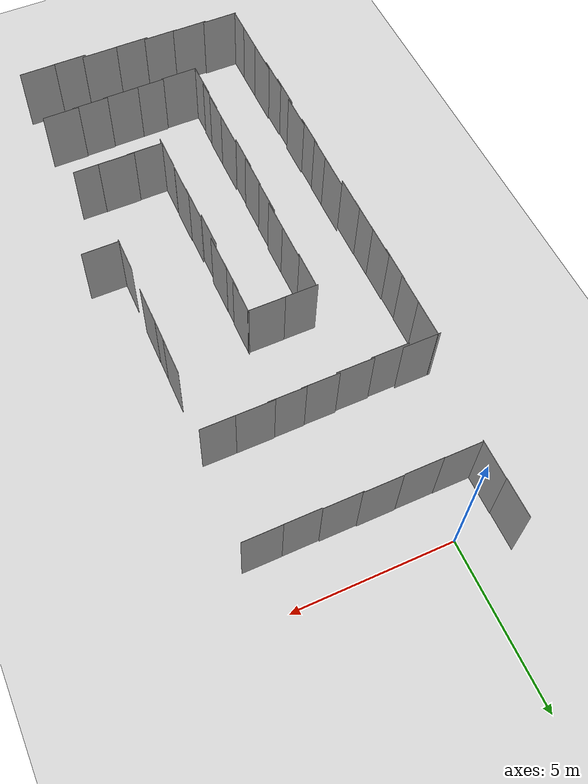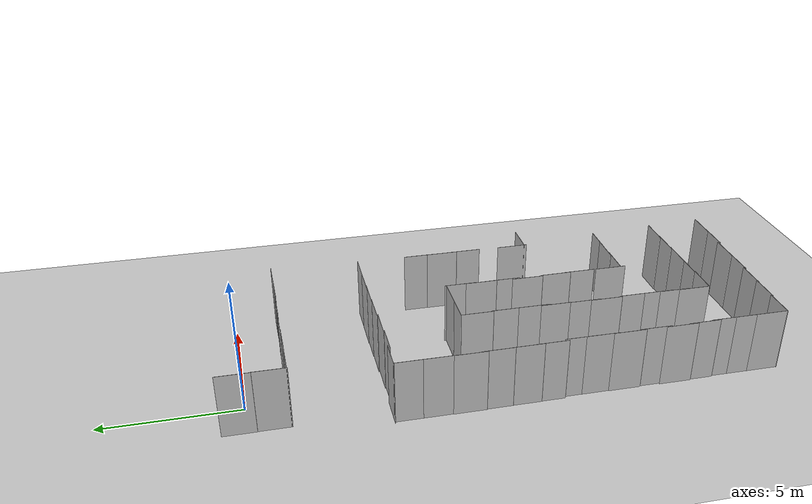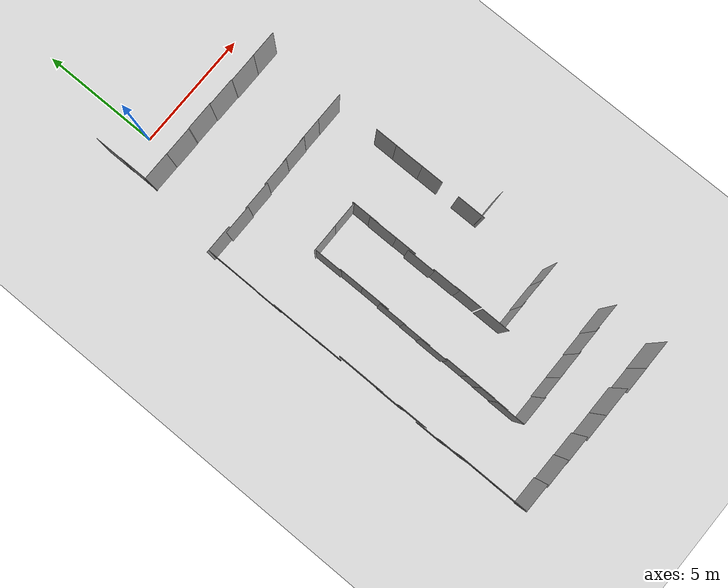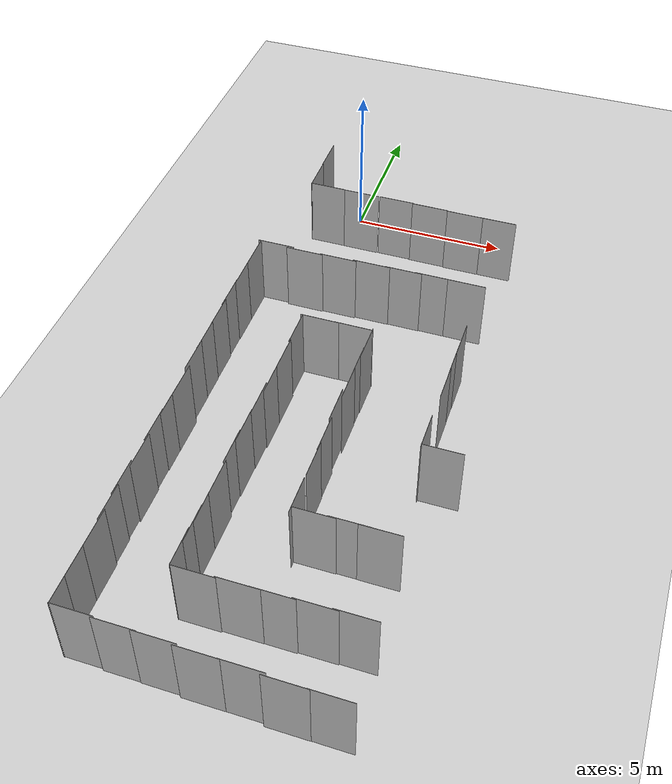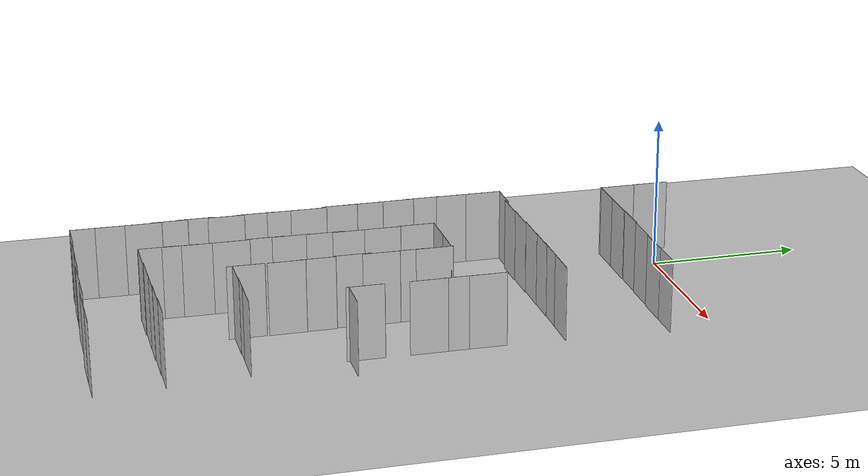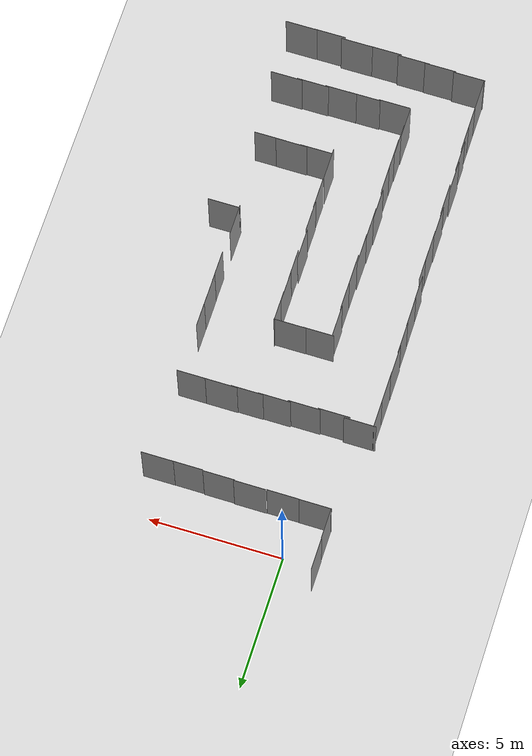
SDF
<sdf version="1.7">
 <world name="default">
  <model name="ground_plane">
   <static>1</static>
   <link name="link">
    <collision name="collision">
     <geometry><plane><normal>0 0 1</normal><size>100 100</size></plane></geometry>
     <surface><friction><ode><mu>100</mu><mu2>50</mu2></ode></friction></surface>
    </collision>
    <visual name="visual">
     <cast_shadows>0</cast_shadows>
     <geometry><plane><normal>0 0 1</normal><size>100 100</size></plane></geometry>
     <material>
      <script><uri>file://media/materials/scripts/gazebo.material</uri><name>Gazebo/Grey</name></script>
     </material>
    </visual>
   </link>
  </model>
  <model name="nist_maze_wall_240_clone">
   <static>1</static>
   <link name="nist__maze_wall_240_link">
    <collision name="collision">
     <geometry>
      <mesh><uri>model://nist_maze_wall_240/meshes/nist_maze_wall_240.dae</uri><scale>1 1 1</scale></mesh>
     </geometry>
    </collision>
    <visual name="visual">
     <geometry>
      <mesh><uri>model://nist_maze_wall_240/meshes/nist_maze_wall_240.dae</uri><scale>1 1 1</scale></mesh>
     </geometry>
    </visual>
   </link>
   <pose>0.459411 -2.10367 0 0 -0 0</pose>
  </model>
  <model name="nist_maze_wall_240_clone_0">
   <static>1</static>
   <link name="nist__maze_wall_240_link">
    <collision name="collision">
     <geometry>
      <mesh><uri>model://nist_maze_wall_240/meshes/nist_maze_wall_240.dae</uri><scale>1 1 1</scale></mesh>
     </geometry>
    </collision>
    <visual name="visual">
     <geometry>
      <mesh><uri>model://nist_maze_wall_240/meshes/nist_maze_wall_240.dae</uri><scale>1 1 1</scale></mesh>
     </geometry>
    </visual>
   </link>
   <pose>1.68355 -2.08961 0 0 -0 0</pose>
  </model>
  <model name="nist_maze_wall_240_clone_1">
   <static>1</static>
   <link name="nist__maze_wall_240_link">
    <collision name="collision">
     <geometry>
      <mesh><uri>model://nist_maze_wall_240/meshes/nist_maze_wall_240.dae</uri><scale>1 1 1</scale></mesh>
     </geometry>
    </collision>
    <visual name="visual">
     <geometry>
      <mesh><uri>model://nist_maze_wall_240/meshes/nist_maze_wall_240.dae</uri><scale>1 1 1</scale></mesh>
     </geometry>
    </visual>
   </link>
   <pose>2.82384 -2.11242 0 0 -0 0</pose>
  </model>
  <model name="nist_maze_wall_240_clone_2">
   <static>1</static>
   <link name="nist__maze_wall_240_link">
    <collision name="collision">
     <geometry>
      <mesh><uri>model://nist_maze_wall_240/meshes/nist_maze_wall_240.dae</uri><scale>1 1 1</scale></mesh>
     </geometry>
    </collision>
    <visual name="visual">
     <geometry>
      <mesh><uri>model://nist_maze_wall_240/meshes/nist_maze_wall_240.dae</uri><scale>1 1 1</scale></mesh>
     </geometry>
    </visual>
   </link>
   <pose>4.019 -2.13656 0 0 -0 0</pose>
  </model>
  <model name="nist_maze_wall_240_clone_3">
   <static>1</static>
   <link name="nist__maze_wall_240_link">
    <collision name="collision">
     <geometry>
      <mesh><uri>model://nist_maze_wall_240/meshes/nist_maze_wall_240.dae</uri><scale>1 1 1</scale></mesh>
     </geometry>
    </collision>
    <visual name="visual">
     <geometry>
      <mesh><uri>model://nist_maze_wall_240/meshes/nist_maze_wall_240.dae</uri><scale>1 1 1</scale></mesh>
     </geometry>
    </visual>
   </link>
   <pose>5.11919 -2.13257 0 0 -0 0</pose>
  </model>
  <model name="nist_maze_wall_240_clone_3_clone_4">
   <static>1</static>
   <link name="nist__maze_wall_240_link">
    <collision name="collision">
     <geometry>
      <mesh><uri>model://nist_maze_wall_240/meshes/nist_maze_wall_240.dae</uri><scale>1 1 1</scale></mesh>
     </geometry>
    </collision>
    <visual name="visual">
     <geometry>
      <mesh><uri>model://nist_maze_wall_240/meshes/nist_maze_wall_240.dae</uri><scale>1 1 1</scale></mesh>
     </geometry>
    </visual>
   </link>
   <pose>-0.726352 -2.09682 0 0 -0 0</pose>
  </model>
  <model name="nist_maze_wall_240_clone_3_clone_5_clone_clone">
   <static>1</static>
   <link name="nist__maze_wall_240_link">
    <collision name="collision">
     <geometry>
      <mesh><uri>model://nist_maze_wall_240/meshes/nist_maze_wall_240.dae</uri><scale>1 1 1</scale></mesh>
     </geometry>
    </collision>
    <visual name="visual">
     <geometry>
      <mesh><uri>model://nist_maze_wall_240/meshes/nist_maze_wall_240.dae</uri><scale>1 1 1</scale></mesh>
     </geometry>
    </visual>
   </link>
   <pose>-0.704858 -0.929022 0 0 -0 1.57</pose>
  </model>
  <model name="nist_maze_wall_240_clone_3_clone_5_clone_clone_0">
   <static>1</static>
   <link name="nist__maze_wall_240_link">
    <collision name="collision">
     <geometry>
      <mesh><uri>model://nist_maze_wall_240/meshes/nist_maze_wall_240.dae</uri><scale>1 1 1</scale></mesh>
     </geometry>
    </collision>
    <visual name="visual">
     <geometry>
      <mesh><uri>model://nist_maze_wall_240/meshes/nist_maze_wall_240.dae</uri><scale>1 1 1</scale></mesh>
     </geometry>
    </visual>
   </link>
   <pose>-0.716954 0.246536 0 0 -0 1.57</pose>
  </model>
  <model name="nist_maze_wall_240_clone_3_clone_6_clone_clone_clone_5">
   <static>1</static>
   <link name="nist__maze_wall_240_link">
    <collision name="collision">
     <geometry>
      <mesh><uri>model://nist_maze_wall_240/meshes/nist_maze_wall_240.dae</uri><scale>1 1 1</scale></mesh>
     </geometry>
    </collision>
    <visual name="visual">
     <geometry>
      <mesh><uri>model://nist_maze_wall_240/meshes/nist_maze_wall_240.dae</uri><scale>1 1 1</scale></mesh>
     </geometry>
    </visual>
   </link>
   <pose>5.11802 -15.2594 0 0 -0 0</pose>
  </model>
  <model name="nist_maze_wall_240_clone_3_clone_6_clone_clone_clone_9">
   <static>1</static>
   <link name="nist__maze_wall_240_link">
    <collision name="collision">
     <geometry>
      <mesh><uri>model://nist_maze_wall_240/meshes/nist_maze_wall_240.dae</uri><scale>1 1 1</scale></mesh>
     </geometry>
    </collision>
    <visual name="visual">
     <geometry>
      <mesh><uri>model://nist_maze_wall_240/meshes/nist_maze_wall_240.dae</uri><scale>1 1 1</scale></mesh>
     </geometry>
    </visual>
   </link>
   <pose>5.90849 -12.1957 0 0 -0 0</pose>
  </model>
  <model name="nist_maze_wall_240_clone_3_clone_6_clone_clone_clone_10">
   <static>1</static>
   <link name="nist__maze_wall_240_link">
    <collision name="collision">
     <geometry>
      <mesh><uri>model://nist_maze_wall_240/meshes/nist_maze_wall_240.dae</uri><scale>1 1 1</scale></mesh>
     </geometry>
    </collision>
    <visual name="visual">
     <geometry>
      <mesh><uri>model://nist_maze_wall_240/meshes/nist_maze_wall_240.dae</uri><scale>1 1 1</scale></mesh>
     </geometry>
    </visual>
   </link>
   <pose>4.29995 -15.2529 0 0 -0 0</pose>
  </model>
  <model name="nist_maze_wall_240_clone_3_clone_6_clone_clone_clone_11">
   <static>1</static>
   <link name="nist__maze_wall_240_link">
    <collision name="collision">
     <geometry>
      <mesh><uri>model://nist_maze_wall_240/meshes/nist_maze_wall_240.dae</uri><scale>1 1 1</scale></mesh>
     </geometry>
    </collision>
    <visual name="visual">
     <geometry>
      <mesh><uri>model://nist_maze_wall_240/meshes/nist_maze_wall_240.dae</uri><scale>1 1 1</scale></mesh>
     </geometry>
    </visual>
   </link>
   <pose>3.3523 -15.2711 0 0 -0 0</pose>
  </model>
  <model name="nist_maze_wall_240_clone_3_clone_5_clone_clone_0_clone_13_clone_11_clone">
   <static>1</static>
   <link name="nist__maze_wall_240_link">
    <collision name="collision">
     <geometry>
      <mesh><uri>model://nist_maze_wall_240/meshes/nist_maze_wall_240.dae</uri><scale>1 1 1</scale></mesh>
     </geometry>
    </collision>
    <visual name="visual">
     <geometry>
      <mesh><uri>model://nist_maze_wall_240/meshes/nist_maze_wall_240.dae</uri><scale>1 1 1</scale></mesh>
     </geometry>
    </visual>
   </link>
   <pose>5.92157 -11.0982 0 0 -0 1.57</pose>
  </model>
  <model name="nist_maze_wall_240_clone_3_clone_5_clone_clone_0_clone_13_clone_11_clone_1">
   <static>1</static>
   <link name="nist__maze_wall_240_link">
    <collision name="collision">
     <geometry>
      <mesh><uri>model://nist_maze_wall_240/meshes/nist_maze_wall_240.dae</uri><scale>1 1 1</scale></mesh>
     </geometry>
    </collision>
    <visual name="visual">
     <geometry>
      <mesh><uri>model://nist_maze_wall_240/meshes/nist_maze_wall_240.dae</uri><scale>1 1 1</scale></mesh>
     </geometry>
    </visual>
   </link>
   <pose>5.9524 -9.14789 0 0 -0 1.57</pose>
  </model>
  <model name="nist_maze_wall_240_clone_3_clone_5_clone_clone_0_clone_13_clone_11_clone_2">
   <static>1</static>
   <link name="nist__maze_wall_240_link">
    <collision name="collision">
     <geometry>
      <mesh><uri>model://nist_maze_wall_240/meshes/nist_maze_wall_240.dae</uri><scale>1 1 1</scale></mesh>
     </geometry>
    </collision>
    <visual name="visual">
     <geometry>
      <mesh><uri>model://nist_maze_wall_240/meshes/nist_maze_wall_240.dae</uri><scale>1 1 1</scale></mesh>
     </geometry>
    </visual>
   </link>
   <pose>5.94721 -8.21528 0 0 -0 1.57</pose>
  </model>
  <model name="nist_maze_wall_240_clone_3_clone_5_clone_clone_0_clone_13_clone_11_clone_3">
   <static>1</static>
   <link name="nist__maze_wall_240_link">
    <collision name="collision">
     <geometry>
      <mesh><uri>model://nist_maze_wall_240/meshes/nist_maze_wall_240.dae</uri><scale>1 1 1</scale></mesh>
     </geometry>
    </collision>
    <visual name="visual">
     <geometry>
      <mesh><uri>model://nist_maze_wall_240/meshes/nist_maze_wall_240.dae</uri><scale>1 1 1</scale></mesh>
     </geometry>
    </visual>
   </link>
   <pose>3.34951 -14.2627 0 0 -0 1.57</pose>
  </model>
  <model name="nist_maze_wall_240_clone_3_clone_5_clone_clone_0_clone_13_clone_11_clone_4">
   <static>1</static>
   <link name="nist__maze_wall_240_link">
    <collision name="collision">
     <geometry>
      <mesh><uri>model://nist_maze_wall_240/meshes/nist_maze_wall_240.dae</uri><scale>1 1 1</scale></mesh>
     </geometry>
    </collision>
    <visual name="visual">
     <geometry>
      <mesh><uri>model://nist_maze_wall_240/meshes/nist_maze_wall_240.dae</uri><scale>1 1 1</scale></mesh>
     </geometry>
    </visual>
   </link>
   <pose>3.36298 -13.0004 0 0 -0 1.57</pose>
  </model>
  <model name="nist_maze_wall_240_clone_3_clone_5_clone_clone_0_clone_13_clone_11_clone_5">
   <static>1</static>
   <link name="nist__maze_wall_240_link">
    <collision name="collision">
     <geometry>
      <mesh><uri>model://nist_maze_wall_240/meshes/nist_maze_wall_240.dae</uri><scale>1 1 1</scale></mesh>
     </geometry>
    </collision>
    <visual name="visual">
     <geometry>
      <mesh><uri>model://nist_maze_wall_240/meshes/nist_maze_wall_240.dae</uri><scale>1 1 1</scale></mesh>
     </geometry>
    </visual>
   </link>
   <pose>3.34708 -12.0527 0 0 -0 1.57</pose>
  </model>
  <model name="nist_maze_wall_240_clone_3_clone_5_clone_clone_0_clone_13_clone_11_clone_6">
   <static>1</static>
   <link name="nist__maze_wall_240_link">
    <collision name="collision">
     <geometry>
      <mesh><uri>model://nist_maze_wall_240/meshes/nist_maze_wall_240.dae</uri><scale>1 1 1</scale></mesh>
     </geometry>
    </collision>
    <visual name="visual">
     <geometry>
      <mesh><uri>model://nist_maze_wall_240/meshes/nist_maze_wall_240.dae</uri><scale>1 1 1</scale></mesh>
     </geometry>
    </visual>
   </link>
   <pose>3.29989 -10.9254 0 0 -0 1.57</pose>
  </model>
  <model name="nist_maze_wall_240_clone_3_clone_5_clone_clone_0_clone_13_clone_11_clone_7">
   <static>1</static>
   <link name="nist__maze_wall_240_link">
    <collision name="collision">
     <geometry>
      <mesh><uri>model://nist_maze_wall_240/meshes/nist_maze_wall_240.dae</uri><scale>1 1 1</scale></mesh>
     </geometry>
    </collision>
    <visual name="visual">
     <geometry>
      <mesh><uri>model://nist_maze_wall_240/meshes/nist_maze_wall_240.dae</uri><scale>1 1 1</scale></mesh>
     </geometry>
    </visual>
   </link>
   <pose>3.36544 -10.0219 0 0 -0 1.57</pose>
  </model>
  <model name="nist_maze_wall_240_clone_3_clone_5_clone_clone_0_clone_13_clone_11_clone_8">
   <static>1</static>
   <link name="nist__maze_wall_240_link">
    <collision name="collision">
     <geometry>
      <mesh><uri>model://nist_maze_wall_240/meshes/nist_maze_wall_240.dae</uri><scale>1 1 1</scale></mesh>
     </geometry>
    </collision>
    <visual name="visual">
     <geometry>
      <mesh><uri>model://nist_maze_wall_240/meshes/nist_maze_wall_240.dae</uri><scale>1 1 1</scale></mesh>
     </geometry>
    </visual>
   </link>
   <pose>3.35893 -9.13193 0 0 -0 1.57</pose>
  </model>
  <model name="nist_maze_wall_240_clone_3_clone_5_clone_clone_0_clone_13_clone_11_clone_9">
   <static>1</static>
   <link name="nist__maze_wall_240_link">
    <collision name="collision">
     <geometry>
      <mesh><uri>model://nist_maze_wall_240/meshes/nist_maze_wall_240.dae</uri><scale>1 1 1</scale></mesh>
     </geometry>
    </collision>
    <visual name="visual">
     <geometry>
      <mesh><uri>model://nist_maze_wall_240/meshes/nist_maze_wall_240.dae</uri><scale>1 1 1</scale></mesh>
     </geometry>
    </visual>
   </link>
   <pose>3.37559 -8.32263 0 0 -0 1.57</pose>
  </model>
  <model name="nist_maze_wall_240_clone_3_clone_5_clone_clone_0_clone_13_clone_11_clone_10">
   <static>1</static>
   <link name="nist__maze_wall_240_link">
    <collision name="collision">
     <geometry>
      <mesh><uri>model://nist_maze_wall_240/meshes/nist_maze_wall_240.dae</uri><scale>1 1 1</scale></mesh>
     </geometry>
    </collision>
    <visual name="visual">
     <geometry>
      <mesh><uri>model://nist_maze_wall_240/meshes/nist_maze_wall_240.dae</uri><scale>1 1 1</scale></mesh>
     </geometry>
    </visual>
   </link>
   <pose>5.95328 -7.29941 0 0 -0 1.57</pose>
  </model>
  <model name="nist_maze_wall_240_clone_3_clone_6_clone_clone_clone_7_clone">
   <static>1</static>
   <link name="nist__maze_wall_240_link">
    <collision name="collision">
     <geometry>
      <mesh><uri>model://nist_maze_wall_240/meshes/nist_maze_wall_240.dae</uri><scale>1 1 1</scale></mesh>
     </geometry>
    </collision>
    <visual name="visual">
     <geometry>
      <mesh><uri>model://nist_maze_wall_240/meshes/nist_maze_wall_240.dae</uri><scale>1 1 1</scale></mesh>
     </geometry>
    </visual>
   </link>
   <pose>4.89106 -5.46696 0 0 -0 0</pose>
  </model>
  <model name="nist_maze_wall_240_clone_3_clone_6_clone_clone_clone_7_clone_0">
   <static>1</static>
   <link name="nist__maze_wall_240_link">
    <collision name="collision">
     <geometry>
      <mesh><uri>model://nist_maze_wall_240/meshes/nist_maze_wall_240.dae</uri><scale>1 1 1</scale></mesh>
     </geometry>
    </collision>
    <visual name="visual">
     <geometry>
      <mesh><uri>model://nist_maze_wall_240/meshes/nist_maze_wall_240.dae</uri><scale>1 1 1</scale></mesh>
     </geometry>
    </visual>
   </link>
   <pose>3.83615 -5.46611 0 0 -0 0</pose>
  </model>
  <model name="nist_maze_wall_240_clone_3_clone_6_clone_clone_clone_7_clone_1">
   <static>1</static>
   <link name="nist__maze_wall_240_link">
    <collision name="collision">
     <geometry>
      <mesh><uri>model://nist_maze_wall_240/meshes/nist_maze_wall_240.dae</uri><scale>1 1 1</scale></mesh>
     </geometry>
    </collision>
    <visual name="visual">
     <geometry>
      <mesh><uri>model://nist_maze_wall_240/meshes/nist_maze_wall_240.dae</uri><scale>1 1 1</scale></mesh>
     </geometry>
    </visual>
   </link>
   <pose>2.87649 -5.48539 0 0 -0 0</pose>
  </model>
  <model name="nist_maze_wall_240_clone_3_clone_6_clone_clone_clone_7_clone_2">
   <static>1</static>
   <link name="nist__maze_wall_240_link">
    <collision name="collision">
     <geometry>
      <mesh><uri>model://nist_maze_wall_240/meshes/nist_maze_wall_240.dae</uri><scale>1 1 1</scale></mesh>
     </geometry>
    </collision>
    <visual name="visual">
     <geometry>
      <mesh><uri>model://nist_maze_wall_240/meshes/nist_maze_wall_240.dae</uri><scale>1 1 1</scale></mesh>
     </geometry>
    </visual>
   </link>
   <pose>1.85386 -5.50373 0 0 -0 0</pose>
  </model>
  <model name="nist_maze_wall_240_clone_3_clone_6_clone_clone_clone_7_clone_3">
   <static>1</static>
   <link name="nist__maze_wall_240_link">
    <collision name="collision">
     <geometry>
      <mesh><uri>model://nist_maze_wall_240/meshes/nist_maze_wall_240.dae</uri><scale>1 1 1</scale></mesh>
     </geometry>
    </collision>
    <visual name="visual">
     <geometry>
      <mesh><uri>model://nist_maze_wall_240/meshes/nist_maze_wall_240.dae</uri><scale>1 1 1</scale></mesh>
     </geometry>
    </visual>
   </link>
   <pose>0.761613 -5.54472 0 0 -0 0</pose>
  </model>
  <model name="nist_maze_wall_240_clone_3_clone_6_clone_clone_clone_7_clone_4">
   <static>1</static>
   <link name="nist__maze_wall_240_link">
    <collision name="collision">
     <geometry>
      <mesh><uri>model://nist_maze_wall_240/meshes/nist_maze_wall_240.dae</uri><scale>1 1 1</scale></mesh>
     </geometry>
    </collision>
    <visual name="visual">
     <geometry>
      <mesh><uri>model://nist_maze_wall_240/meshes/nist_maze_wall_240.dae</uri><scale>1 1 1</scale></mesh>
     </geometry>
    </visual>
   </link>
   <pose>-0.335871 -5.57873 0 0 -0 0</pose>
  </model>
  <model name="nist_maze_wall_240_clone_3_clone_6_clone_clone_clone_7_clone_3_clone">
   <static>1</static>
   <link name="nist__maze_wall_240_link">
    <collision name="collision">
     <geometry>
      <mesh><uri>model://nist_maze_wall_240/meshes/nist_maze_wall_240.dae</uri><scale>1 1 1</scale></mesh>
     </geometry>
    </collision>
    <visual name="visual">
     <geometry>
      <mesh><uri>model://nist_maze_wall_240/meshes/nist_maze_wall_240.dae</uri><scale>1 1 1</scale></mesh>
     </geometry>
    </visual>
   </link>
   <pose>2.19285 -8.38889 0 0 -0 0</pose>
  </model>
  <model name="nist_maze_wall_240_clone_3_clone_6_clone_clone_clone_7_clone_3_clone_0">
   <static>1</static>
   <link name="nist__maze_wall_240_link">
    <collision name="collision">
     <geometry>
      <mesh><uri>model://nist_maze_wall_240/meshes/nist_maze_wall_240.dae</uri><scale>1 1 1</scale></mesh>
     </geometry>
    </collision>
    <visual name="visual">
     <geometry>
      <mesh><uri>model://nist_maze_wall_240/meshes/nist_maze_wall_240.dae</uri><scale>1 1 1</scale></mesh>
     </geometry>
    </visual>
   </link>
   <pose>1.14339 -8.39575 0 0 -0 0</pose>
  </model>
  <model name="nist_maze_wall_240_clone_3_clone_6_clone_clone_clone_7_clone_3_clone_1">
   <static>1</static>
   <link name="nist__maze_wall_240_link">
    <collision name="collision">
     <geometry>
      <mesh><uri>model://nist_maze_wall_240/meshes/nist_maze_wall_240.dae</uri><scale>1 1 1</scale></mesh>
     </geometry>
    </collision>
    <visual name="visual">
     <geometry>
      <mesh><uri>model://nist_maze_wall_240/meshes/nist_maze_wall_240.dae</uri><scale>1 1 1</scale></mesh>
     </geometry>
    </visual>
   </link>
   <pose>-1.31363 -5.513 0 0 -0 0</pose>
  </model>
  <model name="nist_maze_wall_240_clone_3_clone_5_clone_clone_0_clone_13_clone_11_clone_11_clone">
   <static>1</static>
   <link name="nist__maze_wall_240_link">
    <collision name="collision">
     <geometry>
      <mesh><uri>model://nist_maze_wall_240/meshes/nist_maze_wall_240.dae</uri><scale>1 1 1</scale></mesh>
     </geometry>
    </collision>
    <visual name="visual">
     <geometry>
      <mesh><uri>model://nist_maze_wall_240/meshes/nist_maze_wall_240.dae</uri><scale>1 1 1</scale></mesh>
     </geometry>
    </visual>
   </link>
   <pose>-1.22351 -5.4973 0 0 -0 1.57</pose>
  </model>
  <model name="nist_maze_wall_240_clone_3_clone_5_clone_clone_0_clone_13_clone_11_clone_11_clone_0">
   <static>1</static>
   <link name="nist__maze_wall_240_link">
    <collision name="collision">
     <geometry>
      <mesh><uri>model://nist_maze_wall_240/meshes/nist_maze_wall_240.dae</uri><scale>1 1 1</scale></mesh>
     </geometry>
    </collision>
    <visual name="visual">
     <geometry>
      <mesh><uri>model://nist_maze_wall_240/meshes/nist_maze_wall_240.dae</uri><scale>1 1 1</scale></mesh>
     </geometry>
    </visual>
   </link>
   <pose>-1.22592 -6.49864 0 0 -0 1.57</pose>
  </model>
  <model name="nist_maze_wall_240_clone_3_clone_5_clone_clone_0_clone_13_clone_11_clone_11_clone_1">
   <static>1</static>
   <link name="nist__maze_wall_240_link">
    <collision name="collision">
     <geometry>
      <mesh><uri>model://nist_maze_wall_240/meshes/nist_maze_wall_240.dae</uri><scale>1 1 1</scale></mesh>
     </geometry>
    </collision>
    <visual name="visual">
     <geometry>
      <mesh><uri>model://nist_maze_wall_240/meshes/nist_maze_wall_240.dae</uri><scale>1 1 1</scale></mesh>
     </geometry>
    </visual>
   </link>
   <pose>-1.23912 -7.54582 0 0 -0 1.57</pose>
  </model>
  <model name="nist_maze_wall_240_clone_3_clone_5_clone_clone_0_clone_13_clone_11_clone_11_clone_2">
   <static>1</static>
   <link name="nist__maze_wall_240_link">
    <collision name="collision">
     <geometry>
      <mesh><uri>model://nist_maze_wall_240/meshes/nist_maze_wall_240.dae</uri><scale>1 1 1</scale></mesh>
     </geometry>
    </collision>
    <visual name="visual">
     <geometry>
      <mesh><uri>model://nist_maze_wall_240/meshes/nist_maze_wall_240.dae</uri><scale>1 1 1</scale></mesh>
     </geometry>
    </visual>
   </link>
   <pose>-1.21766 -8.48581 0 0 -0 1.57</pose>
  </model>
  <model name="nist_maze_wall_240_clone_3_clone_5_clone_clone_0_clone_13_clone_11_clone_11_clone_3">
   <static>1</static>
   <link name="nist__maze_wall_240_link">
    <collision name="collision">
     <geometry>
      <mesh><uri>model://nist_maze_wall_240/meshes/nist_maze_wall_240.dae</uri><scale>1 1 1</scale></mesh>
     </geometry>
    </collision>
    <visual name="visual">
     <geometry>
      <mesh><uri>model://nist_maze_wall_240/meshes/nist_maze_wall_240.dae</uri><scale>1 1 1</scale></mesh>
     </geometry>
    </visual>
   </link>
   <pose>-1.21067 -9.52695 0 0 -0 1.57</pose>
  </model>
  <model name="nist_maze_wall_240_clone_3_clone_5_clone_clone_0_clone_13_clone_11_clone_11_clone_4">
   <static>1</static>
   <link name="nist__maze_wall_240_link">
    <collision name="collision">
     <geometry>
      <mesh><uri>model://nist_maze_wall_240/meshes/nist_maze_wall_240.dae</uri><scale>1 1 1</scale></mesh>
     </geometry>
    </collision>
    <visual name="visual">
     <geometry>
      <mesh><uri>model://nist_maze_wall_240/meshes/nist_maze_wall_240.dae</uri><scale>1 1 1</scale></mesh>
     </geometry>
    </visual>
   </link>
   <pose>-1.20202 -10.3925 0 0 -0 1.57</pose>
  </model>
  <model name="nist_maze_wall_240_clone_3_clone_5_clone_clone_0_clone_13_clone_11_clone_11_clone_5">
   <static>1</static>
   <link name="nist__maze_wall_240_link">
    <collision name="collision">
     <geometry>
      <mesh><uri>model://nist_maze_wall_240/meshes/nist_maze_wall_240.dae</uri><scale>1 1 1</scale></mesh>
     </geometry>
    </collision>
    <visual name="visual">
     <geometry>
      <mesh><uri>model://nist_maze_wall_240/meshes/nist_maze_wall_240.dae</uri><scale>1 1 1</scale></mesh>
     </geometry>
    </visual>
   </link>
   <pose>-1.12048 -11.4397 0 0 -0 1.57</pose>
  </model>
  <model name="nist_maze_wall_240_clone_3_clone_5_clone_clone_0_clone_13_clone_11_clone_11_clone_6">
   <static>1</static>
   <link name="nist__maze_wall_240_link">
    <collision name="collision">
     <geometry>
      <mesh><uri>model://nist_maze_wall_240/meshes/nist_maze_wall_240.dae</uri><scale>1 1 1</scale></mesh>
     </geometry>
    </collision>
    <visual name="visual">
     <geometry>
      <mesh><uri>model://nist_maze_wall_240/meshes/nist_maze_wall_240.dae</uri><scale>1 1 1</scale></mesh>
     </geometry>
    </visual>
   </link>
   <pose>-1.12488 -12.2221 0 0 -0 1.57</pose>
  </model>
  <model name="nist_maze_wall_240_clone_3_clone_5_clone_clone_0_clone_13_clone_11_clone_11_clone_7">
   <static>1</static>
   <link name="nist__maze_wall_240_link">
    <collision name="collision">
     <geometry>
      <mesh><uri>model://nist_maze_wall_240/meshes/nist_maze_wall_240.dae</uri><scale>1 1 1</scale></mesh>
     </geometry>
    </collision>
    <visual name="visual">
     <geometry>
      <mesh><uri>model://nist_maze_wall_240/meshes/nist_maze_wall_240.dae</uri><scale>1 1 1</scale></mesh>
     </geometry>
    </visual>
   </link>
   <pose>-1.14261 -13.2174 0 0 -0 1.57</pose>
  </model>
  <model name="nist_maze_wall_240_clone_3_clone_5_clone_clone_0_clone_13_clone_11_clone_11_clone_8">
   <static>1</static>
   <link name="nist__maze_wall_240_link">
    <collision name="collision">
     <geometry>
      <mesh><uri>model://nist_maze_wall_240/meshes/nist_maze_wall_240.dae</uri><scale>1 1 1</scale></mesh>
     </geometry>
    </collision>
    <visual name="visual">
     <geometry>
      <mesh><uri>model://nist_maze_wall_240/meshes/nist_maze_wall_240.dae</uri><scale>1 1 1</scale></mesh>
     </geometry>
    </visual>
   </link>
   <pose>-1.10874 -14.1607 0 0 -0 1.57</pose>
  </model>
  <model name="nist_maze_wall_240_clone_3_clone_5_clone_clone_0_clone_13_clone_11_clone_11_clone_9">
   <static>1</static>
   <link name="nist__maze_wall_240_link">
    <collision name="collision">
     <geometry>
      <mesh><uri>model://nist_maze_wall_240/meshes/nist_maze_wall_240.dae</uri><scale>1 1 1</scale></mesh>
     </geometry>
    </collision>
    <visual name="visual">
     <geometry>
      <mesh><uri>model://nist_maze_wall_240/meshes/nist_maze_wall_240.dae</uri><scale>1 1 1</scale></mesh>
     </geometry>
    </visual>
   </link>
   <pose>-1.15705 -15.1496 0 0 -0 1.57</pose>
  </model>
  <model name="nist_maze_wall_240_clone_3_clone_5_clone_clone_0_clone_13_clone_11_clone_11_clone_10">
   <static>1</static>
   <link name="nist__maze_wall_240_link">
    <collision name="collision">
     <geometry>
      <mesh><uri>model://nist_maze_wall_240/meshes/nist_maze_wall_240.dae</uri><scale>1 1 1</scale></mesh>
     </geometry>
    </collision>
    <visual name="visual">
     <geometry>
      <mesh><uri>model://nist_maze_wall_240/meshes/nist_maze_wall_240.dae</uri><scale>1 1 1</scale></mesh>
     </geometry>
    </visual>
   </link>
   <pose>-1.12695 -16.0038 0 0 -0 1.57</pose>
  </model>
  <model name="nist_maze_wall_240_clone_3_clone_5_clone_clone_0_clone_13_clone_11_clone_11_clone_11">
   <static>1</static>
   <link name="nist__maze_wall_240_link">
    <collision name="collision">
     <geometry>
      <mesh><uri>model://nist_maze_wall_240/meshes/nist_maze_wall_240.dae</uri><scale>1 1 1</scale></mesh>
     </geometry>
    </collision>
    <visual name="visual">
     <geometry>
      <mesh><uri>model://nist_maze_wall_240/meshes/nist_maze_wall_240.dae</uri><scale>1 1 1</scale></mesh>
     </geometry>
    </visual>
   </link>
   <pose>-1.091 -16.8488 0 0 -0 1.57</pose>
  </model>
  <model name="nist_maze_wall_240_clone_3_clone_5_clone_clone_0_clone_13_clone_11_clone_11_clone_2_clone">
   <static>1</static>
   <link name="nist__maze_wall_240_link">
    <collision name="collision">
     <geometry>
      <mesh><uri>model://nist_maze_wall_240/meshes/nist_maze_wall_240.dae</uri><scale>1 1 1</scale></mesh>
     </geometry>
    </collision>
    <visual name="visual">
     <geometry>
      <mesh><uri>model://nist_maze_wall_240/meshes/nist_maze_wall_240.dae</uri><scale>1 1 1</scale></mesh>
     </geometry>
    </visual>
   </link>
   <pose>1.21041 -8.4086 0 0 -0 1.57</pose>
  </model>
  <model name="nist_maze_wall_240_clone_3_clone_5_clone_clone_0_clone_13_clone_11_clone_11_clone_2_clone_0">
   <static>1</static>
   <link name="nist__maze_wall_240_link">
    <collision name="collision">
     <geometry>
      <mesh><uri>model://nist_maze_wall_240/meshes/nist_maze_wall_240.dae</uri><scale>1 1 1</scale></mesh>
     </geometry>
    </collision>
    <visual name="visual">
     <geometry>
      <mesh><uri>model://nist_maze_wall_240/meshes/nist_maze_wall_240.dae</uri><scale>1 1 1</scale></mesh>
     </geometry>
    </visual>
   </link>
   <pose>1.24025 -9.50345 0 0 -0 1.57</pose>
  </model>
  <model name="nist_maze_wall_240_clone_3_clone_5_clone_clone_0_clone_13_clone_11_clone_11_clone_2_clone_1">
   <static>1</static>
   <link name="nist__maze_wall_240_link">
    <collision name="collision">
     <geometry>
      <mesh><uri>model://nist_maze_wall_240/meshes/nist_maze_wall_240.dae</uri><scale>1 1 1</scale></mesh>
     </geometry>
    </collision>
    <visual name="visual">
     <geometry>
      <mesh><uri>model://nist_maze_wall_240/meshes/nist_maze_wall_240.dae</uri><scale>1 1 1</scale></mesh>
     </geometry>
    </visual>
   </link>
   <pose>1.23907 -10.5297 0 0 -0 1.57</pose>
  </model>
  <model name="nist_maze_wall_240_clone_3_clone_5_clone_clone_0_clone_13_clone_11_clone_11_clone_2_clone_2">
   <static>1</static>
   <link name="nist__maze_wall_240_link">
    <collision name="collision">
     <geometry>
      <mesh><uri>model://nist_maze_wall_240/meshes/nist_maze_wall_240.dae</uri><scale>1 1 1</scale></mesh>
     </geometry>
    </collision>
    <visual name="visual">
     <geometry>
      <mesh><uri>model://nist_maze_wall_240/meshes/nist_maze_wall_240.dae</uri><scale>1 1 1</scale></mesh>
     </geometry>
    </visual>
   </link>
   <pose>1.1956 -11.3668 0 0 -0 1.57</pose>
  </model>
  <model name="nist_maze_wall_240_clone_3_clone_5_clone_clone_0_clone_13_clone_11_clone_11_clone_2_clone_3">
   <static>1</static>
   <link name="nist__maze_wall_240_link">
    <collision name="collision">
     <geometry>
      <mesh><uri>model://nist_maze_wall_240/meshes/nist_maze_wall_240.dae</uri><scale>1 1 1</scale></mesh>
     </geometry>
    </collision>
    <visual name="visual">
     <geometry>
      <mesh><uri>model://nist_maze_wall_240/meshes/nist_maze_wall_240.dae</uri><scale>1 1 1</scale></mesh>
     </geometry>
    </visual>
   </link>
   <pose>1.17811 -12.4647 0 0 -0 1.57</pose>
  </model>
  <model name="nist_maze_wall_240_clone_3_clone_5_clone_clone_0_clone_13_clone_11_clone_11_clone_2_clone_4">
   <static>1</static>
   <link name="nist__maze_wall_240_link">
    <collision name="collision">
     <geometry>
      <mesh><uri>model://nist_maze_wall_240/meshes/nist_maze_wall_240.dae</uri><scale>1 1 1</scale></mesh>
     </geometry>
    </collision>
    <visual name="visual">
     <geometry>
      <mesh><uri>model://nist_maze_wall_240/meshes/nist_maze_wall_240.dae</uri><scale>1 1 1</scale></mesh>
     </geometry>
    </visual>
   </link>
   <pose>1.15397 -13.2532 0 0 -0 1.57</pose>
  </model>
  <model name="nist_maze_wall_240_clone_3_clone_5_clone_clone_0_clone_13_clone_11_clone_11_clone_2_clone_5">
   <static>1</static>
   <link name="nist__maze_wall_240_link">
    <collision name="collision">
     <geometry>
      <mesh><uri>model://nist_maze_wall_240/meshes/nist_maze_wall_240.dae</uri><scale>1 1 1</scale></mesh>
     </geometry>
    </collision>
    <visual name="visual">
     <geometry>
      <mesh><uri>model://nist_maze_wall_240/meshes/nist_maze_wall_240.dae</uri><scale>1 1 1</scale></mesh>
     </geometry>
    </visual>
   </link>
   <pose>1.20089 -14.3691 0 0 -0 1.57</pose>
  </model>
  <model name="nist_maze_wall_240_clone_3_clone_5_clone_clone_0_clone_13_clone_11_clone_11_clone_2_clone_6">
   <static>1</static>
   <link name="nist__maze_wall_240_link">
    <collision name="collision">
     <geometry>
      <mesh><uri>model://nist_maze_wall_240/meshes/nist_maze_wall_240.dae</uri><scale>1 1 1</scale></mesh>
     </geometry>
    </collision>
    <visual name="visual">
     <geometry>
      <mesh><uri>model://nist_maze_wall_240/meshes/nist_maze_wall_240.dae</uri><scale>1 1 1</scale></mesh>
     </geometry>
    </visual>
   </link>
   <pose>1.19887 -15.3322 0 0 -0 1.57</pose>
  </model>
  <model name="nist_maze_wall_240_clone_3_clone_5_clone_clone_0_clone_13_clone_11_clone_11_clone_2_clone_7">
   <static>1</static>
   <link name="nist__maze_wall_240_link">
    <collision name="collision">
     <geometry>
      <mesh><uri>model://nist_maze_wall_240/meshes/nist_maze_wall_240.dae</uri><scale>1 1 1</scale></mesh>
     </geometry>
    </collision>
    <visual name="visual">
     <geometry>
      <mesh><uri>model://nist_maze_wall_240/meshes/nist_maze_wall_240.dae</uri><scale>1 1 1</scale></mesh>
     </geometry>
    </visual>
   </link>
   <pose>1.18083 -15.9445 0 0 -0 1.57</pose>
  </model>
  <model name="nist_maze_wall_240_clone_3_clone_5_clone_clone_0_clone_13_clone_11_clone_11_clone_2_clone_8">
   <static>1</static>
   <link name="nist__maze_wall_240_link">
    <collision name="collision">
     <geometry>
      <mesh><uri>model://nist_maze_wall_240/meshes/nist_maze_wall_240.dae</uri><scale>1 1 1</scale></mesh>
     </geometry>
    </collision>
    <visual name="visual">
     <geometry>
      <mesh><uri>model://nist_maze_wall_240/meshes/nist_maze_wall_240.dae</uri><scale>1 1 1</scale></mesh>
     </geometry>
    </visual>
   </link>
   <pose>1.15634 -16.6981 0 0 -0 1.57</pose>
  </model>
  <model name="nist_maze_wall_240_clone_3_clone_5_clone_clone_0_clone_13_clone_11_clone_11_clone_2_clone_9">
   <static>1</static>
   <link name="nist__maze_wall_240_link">
    <collision name="collision">
     <geometry>
      <mesh><uri>model://nist_maze_wall_240/meshes/nist_maze_wall_240.dae</uri><scale>1 1 1</scale></mesh>
     </geometry>
    </collision>
    <visual name="visual">
     <geometry>
      <mesh><uri>model://nist_maze_wall_240/meshes/nist_maze_wall_240.dae</uri><scale>1 1 1</scale></mesh>
     </geometry>
    </visual>
   </link>
   <pose>-1.09297 -17.7961 0 0 -0 1.57</pose>
  </model>
  <model name="nist_maze_wall_240_clone_3_clone_5_clone_clone_0_clone_13_clone_11_clone_11_clone_2_clone_10">
   <static>1</static>
   <link name="nist__maze_wall_240_link">
    <collision name="collision">
     <geometry>
      <mesh><uri>model://nist_maze_wall_240/meshes/nist_maze_wall_240.dae</uri><scale>1 1 1</scale></mesh>
     </geometry>
    </collision>
    <visual name="visual">
     <geometry>
      <mesh><uri>model://nist_maze_wall_240/meshes/nist_maze_wall_240.dae</uri><scale>1 1 1</scale></mesh>
     </geometry>
    </visual>
   </link>
   <pose>-1.09586 -18.5961 0 0 -0 1.57</pose>
  </model>
  <model name="nist_maze_wall_240_clone_3_clone_6_clone_clone_clone_11_clone">
   <static>1</static>
   <link name="nist__maze_wall_240_link">
    <collision name="collision">
     <geometry>
      <mesh><uri>model://nist_maze_wall_240/meshes/nist_maze_wall_240.dae</uri><scale>1 1 1</scale></mesh>
     </geometry>
    </collision>
    <visual name="visual">
     <geometry>
      <mesh><uri>model://nist_maze_wall_240/meshes/nist_maze_wall_240.dae</uri><scale>1 1 1</scale></mesh>
     </geometry>
    </visual>
   </link>
   <pose>-1.12705 -19.7831 0 0 -0 0</pose>
  </model>
  <model name="nist_maze_wall_240_clone_3_clone_6_clone_clone_clone_11_clone_0">
   <static>1</static>
   <link name="nist__maze_wall_240_link">
    <collision name="collision">
     <geometry>
      <mesh><uri>model://nist_maze_wall_240/meshes/nist_maze_wall_240.dae</uri><scale>1 1 1</scale></mesh>
     </geometry>
    </collision>
    <visual name="visual">
     <geometry>
      <mesh><uri>model://nist_maze_wall_240/meshes/nist_maze_wall_240.dae</uri><scale>1 1 1</scale></mesh>
     </geometry>
    </visual>
   </link>
   <pose>-0.014551 -19.8226 0 0 -0 0</pose>
  </model>
  <model name="nist_maze_wall_240_clone_3_clone_6_clone_clone_clone_11_clone_1">
   <static>1</static>
   <link name="nist__maze_wall_240_link">
    <collision name="collision">
     <geometry>
      <mesh><uri>model://nist_maze_wall_240/meshes/nist_maze_wall_240.dae</uri><scale>1 1 1</scale></mesh>
     </geometry>
    </collision>
    <visual name="visual">
     <geometry>
      <mesh><uri>model://nist_maze_wall_240/meshes/nist_maze_wall_240.dae</uri><scale>1 1 1</scale></mesh>
     </geometry>
    </visual>
   </link>
   <pose>1.02287 -19.8378 0 0 -0 0</pose>
  </model>
  <model name="nist_maze_wall_240_clone_3_clone_6_clone_clone_clone_11_clone_2">
   <static>1</static>
   <link name="nist__maze_wall_240_link">
    <collision name="collision">
     <geometry>
      <mesh><uri>model://nist_maze_wall_240/meshes/nist_maze_wall_240.dae</uri><scale>1 1 1</scale></mesh>
     </geometry>
    </collision>
    <visual name="visual">
     <geometry>
      <mesh><uri>model://nist_maze_wall_240/meshes/nist_maze_wall_240.dae</uri><scale>1 1 1</scale></mesh>
     </geometry>
    </visual>
   </link>
   <pose>2.10388 -19.8897 0 0 -0 0</pose>
  </model>
  <model name="nist_maze_wall_240_clone_3_clone_6_clone_clone_clone_11_clone_3">
   <static>1</static>
   <link name="nist__maze_wall_240_link">
    <collision name="collision">
     <geometry>
      <mesh><uri>model://nist_maze_wall_240/meshes/nist_maze_wall_240.dae</uri><scale>1 1 1</scale></mesh>
     </geometry>
    </collision>
    <visual name="visual">
     <geometry>
      <mesh><uri>model://nist_maze_wall_240/meshes/nist_maze_wall_240.dae</uri><scale>1 1 1</scale></mesh>
     </geometry>
    </visual>
   </link>
   <pose>3.22284 -19.8847 0 0 -0 0</pose>
  </model>
  <model name="nist_maze_wall_240_clone_3_clone_6_clone_clone_clone_11_clone_4">
   <static>1</static>
   <link name="nist__maze_wall_240_link">
    <collision name="collision">
     <geometry>
      <mesh><uri>model://nist_maze_wall_240/meshes/nist_maze_wall_240.dae</uri><scale>1 1 1</scale></mesh>
     </geometry>
    </collision>
    <visual name="visual">
     <geometry>
      <mesh><uri>model://nist_maze_wall_240/meshes/nist_maze_wall_240.dae</uri><scale>1 1 1</scale></mesh>
     </geometry>
    </visual>
   </link>
   <pose>4.29782 -19.9554 0 0 -0 0</pose>
  </model>
  <model name="nist_maze_wall_240_clone_3_clone_6_clone_clone_clone_11_clone_5">
   <static>1</static>
   <link name="nist__maze_wall_240_link">
    <collision name="collision">
     <geometry>
      <mesh><uri>model://nist_maze_wall_240/meshes/nist_maze_wall_240.dae</uri><scale>1 1 1</scale></mesh>
     </geometry>
    </collision>
    <visual name="visual">
     <geometry>
      <mesh><uri>model://nist_maze_wall_240/meshes/nist_maze_wall_240.dae</uri><scale>1 1 1</scale></mesh>
     </geometry>
    </visual>
   </link>
   <pose>5.39522 -19.9483 0 0 -0 0</pose>
  </model>
  <model name="nist_maze_wall_240_clone_3_clone_6_clone_clone_clone_10_clone">
   <static>1</static>
   <link name="nist__maze_wall_240_link">
    <collision name="collision">
     <geometry>
      <mesh><uri>model://nist_maze_wall_240/meshes/nist_maze_wall_240.dae</uri><scale>1 1 1</scale></mesh>
     </geometry>
    </collision>
    <visual name="visual">
     <geometry>
      <mesh><uri>model://nist_maze_wall_240/meshes/nist_maze_wall_240.dae</uri><scale>1 1 1</scale></mesh>
     </geometry>
    </visual>
   </link>
   <pose>1.16481 -17.8817 0 0 -0 0</pose>
  </model>
  <model name="nist_maze_wall_240_clone_3_clone_6_clone_clone_clone_10_clone_0">
   <static>1</static>
   <link name="nist__maze_wall_240_link">
    <collision name="collision">
     <geometry>
      <mesh><uri>model://nist_maze_wall_240/meshes/nist_maze_wall_240.dae</uri><scale>1 1 1</scale></mesh>
     </geometry>
    </collision>
    <visual name="visual">
     <geometry>
      <mesh><uri>model://nist_maze_wall_240/meshes/nist_maze_wall_240.dae</uri><scale>1 1 1</scale></mesh>
     </geometry>
    </visual>
   </link>
   <pose>2.30853 -17.8515 0 0 -0 0</pose>
  </model>
  <model name="nist_maze_wall_240_clone_3_clone_6_clone_clone_clone_10_clone_1">
   <static>1</static>
   <link name="nist__maze_wall_240_link">
    <collision name="collision">
     <geometry>
      <mesh><uri>model://nist_maze_wall_240/meshes/nist_maze_wall_240.dae</uri><scale>1 1 1</scale></mesh>
     </geometry>
    </collision>
    <visual name="visual">
     <geometry>
      <mesh><uri>model://nist_maze_wall_240/meshes/nist_maze_wall_240.dae</uri><scale>1 1 1</scale></mesh>
     </geometry>
    </visual>
   </link>
   <pose>3.21241 -17.8456 0 0 -0 0</pose>
  </model>
  <model name="nist_maze_wall_240_clone_3_clone_6_clone_clone_clone_10_clone_2">
   <static>1</static>
   <link name="nist__maze_wall_240_link">
    <collision name="collision">
     <geometry>
      <mesh><uri>model://nist_maze_wall_240/meshes/nist_maze_wall_240.dae</uri><scale>1 1 1</scale></mesh>
     </geometry>
    </collision>
    <visual name="visual">
     <geometry>
      <mesh><uri>model://nist_maze_wall_240/meshes/nist_maze_wall_240.dae</uri><scale>1 1 1</scale></mesh>
     </geometry>
    </visual>
   </link>
   <pose>4.2821 -17.8198 0 0 -0 0</pose>
  </model>
  <model name="nist_maze_wall_240_clone_3_clone_6_clone_clone_clone_10_clone_3">
   <static>1</static>
   <link name="nist__maze_wall_240_link">
    <collision name="collision">
     <geometry>
      <mesh><uri>model://nist_maze_wall_240/meshes/nist_maze_wall_240.dae</uri><scale>1 1 1</scale></mesh>
     </geometry>
    </collision>
    <visual name="visual">
     <geometry>
      <mesh><uri>model://nist_maze_wall_240/meshes/nist_maze_wall_240.dae</uri><scale>1 1 1</scale></mesh>
     </geometry>
    </visual>
   </link>
   <pose>5.28825 -17.7957 0 0 -0 0</pose>
  </model>
 </world>
</sdf>
